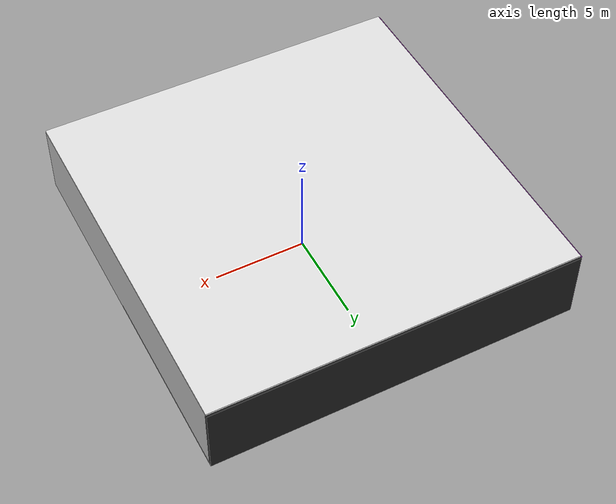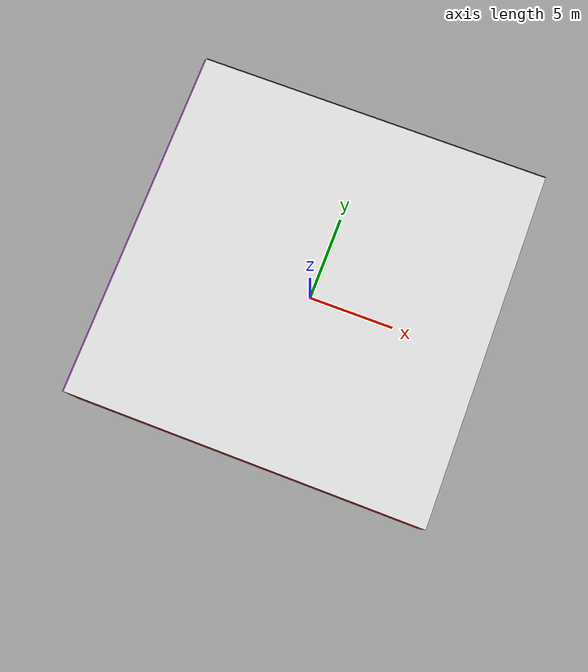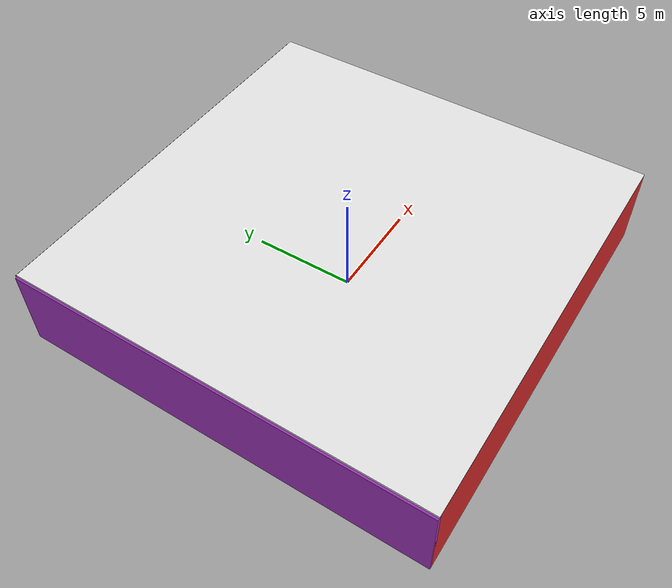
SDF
<sdf version="1.4">
 <world name="default">
  <physics type="ode">
   <max_step_size>0.001</max_step_size>
   <real_time_factor>1</real_time_factor>
   <real_time_update_rate>1000</real_time_update_rate>
   <gravity>0 0 -9.8</gravity>
  </physics>
  <scene><ambient>0.4 0.4 0.4 1</ambient><background>0.7 0.7 0.7 1</background><shadows>1</shadows></scene>
  <model name="Surrounding">
   <static>1</static>
   <link name="Ceiling">
    <collision name="Ceiling_Collision"><geometry><box><size>20 20 0.1</size></box></geometry></collision>
    <visual name="Ceiling_Visual">
     <geometry><box><size>20 20 0.1</size></box></geometry>
     <material>
      <script><uri>file://media/materials/scripts/gazebo.material</uri><name>Gazebo/White</name></script>
     </material>
    </visual>
    <pose>0 0 4.05 0 0 0</pose>
   </link>
   <link name="Wall_South">
    <collision name="Wall_South_Collision">
     <geometry><box><size>20 0 4</size></box></geometry>
     <pose>0 0 2 0 -0 0</pose>
    </collision>
    <visual name="Wall_South_Visual">
     <pose>0 0 2 0 -0 0</pose>
     <geometry><box><size>20 0 4</size></box></geometry>
     <material>
      <script><uri>file://media/materials/scripts/gazebo.material</uri><name>Gazebo/RedBright</name></script>
     </material>
    </visual>
    <velocity_decay><linear>0</linear><angular>0</angular></velocity_decay>
    <pose>0 -10 0 0 -0 0</pose>
   </link>
   <link name="Wall_East">
    <collision name="Wall_21_Collision">
     <geometry><box><size>20 0 4</size></box></geometry>
     <pose>0 0 2 0 -0 0</pose>
    </collision>
    <visual name="Wall_21_Visual">
     <pose>0 0 2 0 -0 0</pose>
     <geometry><box><size>20 0 4</size></box></geometry>
     <material>
      <script><uri>file://media/materials/scripts/gazebo.material</uri><name>Gazebo/CloudySky</name></script>
     </material>
    </visual>
    <velocity_decay><linear>0</linear><angular>0</angular></velocity_decay>
    <pose>10 0 0 0 -0 1.5708</pose>
   </link>
   <link name="Wall_North">
    <collision name="Wall_22_Collision">
     <geometry><box><size>20 0.2 4</size></box></geometry>
     <pose>0 0 2 0 -0 0</pose>
    </collision>
    <visual name="Wall_22_Visual">
     <pose>0 0 2 0 -0 0</pose>
     <geometry><box><size>20 0.2 4</size></box></geometry>
     <material>
      <script><uri>file://media/materials/scripts/gazebo.material</uri><name>Gazebo/FlatBlack</name></script>
     </material>
    </visual>
    <velocity_decay><linear>0</linear><angular>0</angular></velocity_decay>
    <pose>0 10 0 0 -0 0</pose>
   </link>
   <link name="Wall_West">
    <collision name="Wall_23_Collision">
     <geometry><box><size>20 0.2 4</size></box></geometry>
     <pose>0 0 2 0 -0 0</pose>
    </collision>
    <visual name="Wall_23_Visual">
     <pose>0 0 2 0 -0 0</pose>
     <geometry><box><size>20 0.2 4</size></box></geometry>
     <material>
      <script><uri>file://media/materials/scripts/gazebo.material</uri><name>Gazebo/PurpleGlow</name></script>
     </material>
    </visual>
    <velocity_decay><linear>0</linear><angular>0</angular></velocity_decay>
    <pose>-10 0 0 0 0 -1.5708</pose>
   </link>
   <link name="Ground_link">
    <collision name="collision">
     <pose>0 0 .05 0 -0 0</pose>
     <geometry><box><size>20 20 0.1</size></box></geometry>
    </collision>
    <visual name="visual">
     <pose>0 0 .05 0 -0 0</pose>
     <geometry><box><size>20 20 0.1</size></box></geometry>
     <material>
      <script><uri>file://media/materials/scripts/gazebo.material</uri><name>Gazebo/Grey</name></script>
     </material>
    </visual>
   </link>
   <static>1</static>
  </model>
  <spherical_coordinates>
   <surface_model>EARTH_WGS84</surface_model>
   <latitude_deg>0</latitude_deg>
   <longitude_deg>0</longitude_deg>
   <elevation>0</elevation>
   <heading_deg>0</heading_deg>
  </spherical_coordinates>
  <light name="lightball_0" type="diffuse">
   <diffuse>0.8 0.8 0.8 1</diffuse>
   <specular>0.2 0.2 0.2 1</specular>
   <attenuation>
    <range>100</range>
    <constant>0.7</constant>
    <linear>0.01</linear>
    <quadratic>0.001</quadratic>
   </attenuation>
   <direction>-0.5 0.1 -0.9</direction>
   <pose>2.924643022 -3.93283868866 1.80830734628 0 0 0</pose>
  </light>
  <light name="lightball_1" type="diffuse">
   <diffuse>0.8 0.8 0.8 1</diffuse>
   <specular>0.2 0.2 0.2 1</specular>
   <attenuation>
    <range>100</range>
    <constant>0.7</constant>
    <linear>0.01</linear>
    <quadratic>0.001</quadratic>
   </attenuation>
   <direction>-0.5 0.1 -0.9</direction>
   <pose>-8.78065113757 2.01006975265 1.48815710787 0 0 0</pose>
  </light>
  <light name="lightball_2" type="diffuse">
   <diffuse>0.8 0.8 0.8 1</diffuse>
   <specular>0.2 0.2 0.2 1</specular>
   <attenuation>
    <range>100</range>
    <constant>0.7</constant>
    <linear>0.01</linear>
    <quadratic>0.001</quadratic>
   </attenuation>
   <direction>-0.5 0.1 -0.9</direction>
   <pose>4.88347438253 -7.04867448047 2.54418258393 0 0 0</pose>
  </light>
  <light name="lightball_3" type="diffuse">
   <diffuse>0.8 0.8 0.8 1</diffuse>
   <specular>0.2 0.2 0.2 1</specular>
   <attenuation>
    <range>100</range>
    <constant>0.7</constant>
    <linear>0.01</linear>
    <quadratic>0.001</quadratic>
   </attenuation>
   <direction>-0.5 0.1 -0.9</direction>
   <pose>-5.52864846072 5.499401906 1.09017018242 0 0 0</pose>
  </light>
  <light name="lightball_4" type="diffuse">
   <diffuse>0.8 0.8 0.8 1</diffuse>
   <specular>0.2 0.2 0.2 1</specular>
   <attenuation>
    <range>100</range>
    <constant>0.7</constant>
    <linear>0.01</linear>
    <quadratic>0.001</quadratic>
   </attenuation>
   <direction>-0.5 0.1 -0.9</direction>
   <pose>4.85956219486 1.24496966432 3.67545318045 0 0 0</pose>
  </light>
  <light name="lightball_5" type="diffuse">
   <diffuse>0.8 0.8 0.8 1</diffuse>
   <specular>0.2 0.2 0.2 1</specular>
   <attenuation>
    <range>100</range>
    <constant>0.7</constant>
    <linear>0.01</linear>
    <quadratic>0.001</quadratic>
   </attenuation>
   <direction>-0.5 0.1 -0.9</direction>
   <pose>8.55131758779 1.57302972605 1.31268839121 0 0 0</pose>
  </light>
  <light name="lightball_6" type="diffuse">
   <diffuse>0.8 0.8 0.8 1</diffuse>
   <specular>0.2 0.2 0.2 1</specular>
   <attenuation>
    <range>100</range>
    <constant>0.7</constant>
    <linear>0.01</linear>
    <quadratic>0.001</quadratic>
   </attenuation>
   <direction>-0.5 0.1 -0.9</direction>
   <pose>2.16828092373 6.35050105598 2.56677286781 0 0 0</pose>
  </light>
  <light name="lightball_7" type="diffuse">
   <diffuse>0.8 0.8 0.8 1</diffuse>
   <specular>0.2 0.2 0.2 1</specular>
   <attenuation>
    <range>100</range>
    <constant>0.7</constant>
    <linear>0.01</linear>
    <quadratic>0.001</quadratic>
   </attenuation>
   <direction>-0.5 0.1 -0.9</direction>
   <pose>9.24773363178 -6.05916198829 3.89181664771 0 0 0</pose>
  </light>
  <light name="lightball_8" type="diffuse">
   <diffuse>0.8 0.8 0.8 1</diffuse>
   <specular>0.2 0.2 0.2 1</specular>
   <attenuation>
    <range>100</range>
    <constant>0.7</constant>
    <linear>0.01</linear>
    <quadratic>0.001</quadratic>
   </attenuation>
   <direction>-0.5 0.1 -0.9</direction>
   <pose>-3.31622462394 7.07708743358 1.44751796792 0 0 0</pose>
  </light>
  <light name="lightball_9" type="diffuse">
   <diffuse>0.8 0.8 0.8 1</diffuse>
   <specular>0.2 0.2 0.2 1</specular>
   <attenuation>
    <range>100</range>
    <constant>0.7</constant>
    <linear>0.01</linear>
    <quadratic>0.001</quadratic>
   </attenuation>
   <direction>-0.5 0.1 -0.9</direction>
   <pose>4.31092182549 -1.57329535999 0.730392953074 0 0 0</pose>
  </light>
  <light name="lightball_10" type="diffuse">
   <diffuse>0.8 0.8 0.8 1</diffuse>
   <specular>0.2 0.2 0.2 1</specular>
   <attenuation>
    <range>100</range>
    <constant>0.7</constant>
    <linear>0.01</linear>
    <quadratic>0.001</quadratic>
   </attenuation>
   <direction>-0.5 0.1 -0.9</direction>
   <pose>4.49806454189 6.50720449881 1.65533600295 0 0 0</pose>
  </light>
  <light name="lightball_11" type="diffuse">
   <diffuse>0.8 0.8 0.8 1</diffuse>
   <specular>0.2 0.2 0.2 1</specular>
   <attenuation>
    <range>100</range>
    <constant>0.7</constant>
    <linear>0.01</linear>
    <quadratic>0.001</quadratic>
   </attenuation>
   <direction>-0.5 0.1 -0.9</direction>
   <pose>-1.58681917804 0.871755332315 2.52652865061 0 0 0</pose>
  </light>
  <light name="lightball_12" type="diffuse">
   <diffuse>0.8 0.8 0.8 1</diffuse>
   <specular>0.2 0.2 0.2 1</specular>
   <attenuation>
    <range>100</range>
    <constant>0.7</constant>
    <linear>0.01</linear>
    <quadratic>0.001</quadratic>
   </attenuation>
   <direction>-0.5 0.1 -0.9</direction>
   <pose>-3.21307669836 -6.702579793 2.31869974921 0 0 0</pose>
  </light>
  <light name="lightball_13" type="diffuse">
   <diffuse>0.8 0.8 0.8 1</diffuse>
   <specular>0.2 0.2 0.2 1</specular>
   <attenuation>
    <range>100</range>
    <constant>0.7</constant>
    <linear>0.01</linear>
    <quadratic>0.001</quadratic>
   </attenuation>
   <direction>-0.5 0.1 -0.9</direction>
   <pose>7.70932210696 -6.94983152272 3.7921549486 0 0 0</pose>
  </light>
  <include>
   <uri>model://textured_shapes</uri>
   <pose>4.42818387897 -4.53165026829 0 0 0 1.35412584362</pose>
  </include>
  <include>
   <uri>model://robocup_3Dsim_goal</uri>
   <pose>4.07549731845 1.59721542239 0 0 0 1.22027600522</pose>
  </include>
  <include><uri>model://table</uri><pose>4.53259376201 4.68639689642 0 0 0 1.41715529984</pose></include>
  <include><uri>model://cabinet</uri><pose>7.51102416471 -7.53940894594 0 0 0 2.13597106732</pose></include>
  <include>
   <uri>model://textured_shapes</uri>
   <pose>6.79754073697 -5.21083762348 0 0 0 2.29172744135</pose>
  </include>
  <include>
   <uri>model://construction_cone</uri>
   <pose>6.81299713345 8.16348441565 0 0 0 3.10958728739</pose>
  </include>
 </world>
</sdf>

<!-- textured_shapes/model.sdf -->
<sdf version="1.6">
  <model name="textured_shapes">
    <pose>0 0 0.5 0 0 0</pose>
    <link name="box">
      <pose>0 -1.5 0 0 0 0</pose>
      <collision name="collision">
        <geometry>
          <box>
            <size>1 1 1</size>
          </box>
        </geometry>
      </collision>
      <visual name="visual">
        <geometry>
          <box>
            <size>1 1 1</size>
          </box>
        </geometry>
        <material>
          <script>
            <uri>model://../model_source/models/textured_shapes/materials/scripts</uri>
            <uri>model://../model_source/models/textured_shapes/materials/textures</uri>
            <name>TexturedShape/Squares</name>
          </script>
        </material>
      </visual>
    </link>
    <link name="sphere">
      <collision name="collision">
        <geometry>
          <sphere>
            <radius>0.5</radius>
          </sphere>
        </geometry>
      </collision>
      <visual name="visual">
        <geometry>
          <sphere>
            <radius>0.5</radius>
          </sphere>
        </geometry>
        <material>
          <script>
            <uri>model://../model_source/models/textured_shapes/materials/scripts</uri>
            <uri>model://../model_source/models/textured_shapes/materials/textures</uri>
            <name>TexturedShape/Squares</name>
          </script>
        </material>
      </visual>
    </link>
    <link name="cylinder">
      <pose>0 1.5 0 0 0 0</pose>
      <collision name="collision">
        <geometry>
          <cylinder>
            <radius>0.5</radius>
            <length>1</length>
          </cylinder>
        </geometry>
      </collision>
      <visual name="visual">
        <geometry>
          <cylinder>
            <radius>0.5</radius>
            <length>1</length>
          </cylinder>
        </geometry>
        <material>
          <script>
            <uri>model://../model_source/models/textured_shapes/materials/scripts</uri>
            <uri>model://../model_source/models/textured_shapes/materials/textures</uri>
            <name>TexturedShape/Squares</name>
          </script>
        </material>
      </visual>
    </link>
  </model>
</sdf>

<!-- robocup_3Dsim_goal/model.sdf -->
<sdf version="1.5">
  <model name="robocup_3d_goal">
    <static>true</static>
    <link name="left_post">
      <pose>0 1.05 0.45 0 0 0</pose>
      <collision name="collision">
        <geometry>
          <cylinder>
            <radius>0.05</radius>
            <length>0.9</length>
          </cylinder>
        </geometry>
      </collision>
      <visual name="visual">
        <geometry>
          <cylinder>
            <radius>0.05</radius>
            <length>0.9</length>
          </cylinder>
        </geometry>
        <material>
          <script>
            <uri>file://media/materials/scripts/gazebo.material</uri>
            <name>Gazebo/ZincYellow</name>
          </script>
        </material>
      </visual>
    </link>
    <link name="left_support_horiz_lower">
      <pose>0.30 1.05 0.01 0 0 0</pose>
      <collision name="collision">
        <geometry>
          <box>
            <size>0.50 0.02 0.02</size>
          </box>
        </geometry>
      </collision>
      <visual name="visual">
        <geometry>
          <box>
            <size>0.50 0.02 0.02</size>
          </box>
        </geometry>
        <material>
          <script>
            <uri>file://media/materials/scripts/gazebo.material</uri>
            <name>Gazebo/White</name>
          </script>
        </material>
      </visual>
    </link>
    <link name="left_support_horiz_upper">
      <pose>0.30 1.05 0.79 0 0 0</pose>
      <collision name="collision">
        <geometry>
          <box>
            <size>0.50 0.02 0.02</size>
          </box>
        </geometry>
      </collision>
      <visual name="visual">
        <geometry>
          <box>
            <size>0.50 0.02 0.02</size>
          </box>
        </geometry>
        <material>
          <script>
            <uri>file://media/materials/scripts/gazebo.material</uri>
            <name>Gazebo/White</name>
          </script>
        </material>
      </visual>
    </link>
    <link name="left_support_vertical">
      <pose>0.56 1.05 0.4 0 1.5708 0</pose>
      <collision name="collision">
        <geometry>
          <box>
            <size>0.80 0.02 0.02</size>
          </box>
        </geometry>
      </collision>
      <visual name="visual">
        <geometry>
          <box>
            <size>0.80 0.02 0.02</size>
          </box>
        </geometry>
        <material>
          <script>
            <uri>file://media/materials/scripts/gazebo.material</uri>
            <name>Gazebo/White</name>
          </script>
        </material>
      </visual>
    </link>
    <link name="right_support_horiz_lower">
      <pose>0.30 -1.05 0.01 0 0 0</pose>
      <collision name="collision">
        <geometry>
          <box>
            <size>0.50 0.02 0.02</size>
          </box>
        </geometry>
      </collision>
      <visual name="visual">
        <geometry>
          <box>
            <size>0.50 0.02 0.02</size>
          </box>
        </geometry>
        <material>
          <script>
            <uri>file://media/materials/scripts/gazebo.material</uri>
            <name>Gazebo/White</name>
          </script>
        </material>
      </visual>
    </link>
    <link name="right_support_horiz_upper">
      <pose>0.30 -1.05 0.79 0 0 0</pose>
      <collision name="collision">
        <geometry>
          <box>
            <size>0.50 0.02 0.02</size>
          </box>
        </geometry>
      </collision>
      <visual name="visual">
        <geometry>
          <box>
            <size>0.50 0.02 0.02</size>
          </box>
        </geometry>
        <material>
          <script>
            <uri>file://media/materials/scripts/gazebo.material</uri>
            <name>Gazebo/White</name>
          </script>
        </material>
      </visual>
    </link>
    <link name="right_support_vertical">
      <pose>0.56 -1.05 0.4 0 1.5708 0</pose>
      <collision name="collision">
        <geometry>
          <box>
            <size>0.80 0.02 0.02</size>
          </box>
        </geometry>
      </collision>
      <visual name="visual">
        <geometry>
          <box>
            <size>0.80 0.02 0.02</size>
          </box>
        </geometry>
        <material>
          <script>
            <uri>file://media/materials/scripts/gazebo.material</uri>
            <name>Gazebo/White</name>
          </script>
        </material>
      </visual>
    </link>
    <link name="center_support_horiz_lower">
      <pose>0.56 0 0.01 0 1.5708 0</pose>
      <collision name="collision">
        <geometry>
          <box>
            <size>0.02 2.08 0.02</size>
          </box>
        </geometry>
      </collision>
      <visual name="visual">
        <geometry>
          <box>
            <size>0.02 2.08 0.02</size>
          </box>
        </geometry>
        <material>
          <script>
            <uri>file://media/materials/scripts/gazebo.material</uri>
            <name>Gazebo/White</name>
          </script>
        </material>
      </visual>
    </link>
    <link name="center_support_horiz_upper">
      <pose>0.56 0 0.79 0 1.5708 0</pose>
      <collision name="collision">
        <geometry>
          <box>
            <size>0.02 2.08 0.02</size>
          </box>
        </geometry>
      </collision>
      <visual name="visual">
        <geometry>
          <box>
            <size>0.02 2.08 0.02</size>
          </box>
        </geometry>
        <material>
          <script>
            <uri>file://media/materials/scripts/gazebo.material</uri>
            <name>Gazebo/White</name>
          </script>
        </material>
      </visual>
    </link>
    <link name="right_post">
      <pose>0 -1.05 0.45 0 0 0</pose>
      <collision name="collision">
        <geometry>
          <cylinder>
            <radius>0.05</radius>
            <length>0.9</length>
          </cylinder>
        </geometry>
      </collision>
      <visual name="visual">
        <geometry>
          <cylinder>
            <radius>0.05</radius>
            <length>0.9</length>
          </cylinder>
        </geometry>
        <material>
          <script>
            <uri>file://media/materials/scripts/gazebo.material</uri>
            <name>Gazebo/ZincYellow</name>
          </script>
        </material>
      </visual>
    </link>
    <link name="crossbar">
      <pose>0 0 0.85 1.57 1.57 0</pose>
      <collision name="collision">
        <geometry>
          <cylinder>
            <radius>0.05</radius>
            <length>2.0</length>
          </cylinder>
        </geometry>
      </collision>
      <visual name="visual">
        <geometry>
          <cylinder>
            <radius>0.05</radius>
            <length>2.0</length>
          </cylinder>
        </geometry>
        <material>
          <script>
            <uri>file://media/materials/scripts/gazebo.material</uri>
            <name>Gazebo/ZincYellow</name>
          </script>
        </material>
      </visual>
    </link>
    <link name="center_net">
      <pose>0.56 0 0.40 0 0 0</pose>
      <collision name="collision">
        <geometry>
          <box>
            <size>0.01 2.1 0.80</size>
          </box>
        </geometry>
      </collision>
      <visual name="visual">
        <geometry>
          <box>
            <size>0.01 2.1 0.80</size>
          </box>
        </geometry>
        <material>
          <script>
            <uri>model://../model_source/models/robocup09_spl_field/materials/scripts/</uri>
            <uri>model://../model_source/models/robocup09_spl_field/materials/textures/</uri>
            <name>RoboCup/Net</name>
          </script>
        </material>
      </visual>
    </link>
    <link name="left_net">
      <pose>0.30 1.05 0.40 0 0 0</pose>
      <collision name="collision">
        <geometry>
          <box>
            <size>0.50 0.01 0.76</size>
          </box>
        </geometry>
      </collision>
      <visual name="visual">
        <geometry>
          <box>
            <size>0.50 0.01 0.76</size>
          </box>
        </geometry>
        <material>
          <script>
            <uri>model://../model_source/models/robocup09_spl_field/materials/scripts/</uri>
            <uri>model://../model_source/models/robocup09_spl_field/materials/textures/</uri>
            <name>RoboCup/Net</name>
          </script>
        </material>
      </visual>
    </link>
    <link name="right_net">
      <pose>0.30 -1.05 0.40 0 0 0</pose>
      <collision name="collision">
        <geometry>
          <box>
            <size>0.50 0.01 0.76</size>
          </box>
        </geometry>
      </collision>
      <visual name="visual">
        <geometry>
          <box>
            <size>0.50 0.01 0.76</size>
          </box>
        </geometry>
        <material>
          <script>
            <uri>model://../model_source/models/robocup09_spl_field/materials/scripts/</uri>
            <uri>model://../model_source/models/robocup09_spl_field/materials/textures/</uri>
            <name>RoboCup/Net</name>
          </script>
        </material>
      </visual>
    </link>
  </model>
</sdf>

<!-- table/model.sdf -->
<sdf version="1.5">
  <model name="table">
    <static>true</static>
    <link name="link">
      <collision name="surface">
        <pose>0 0 1.0 0 0 0</pose>
        <geometry>
          <box>
            <size>1.5 0.8 0.03</size>
          </box>
        </geometry>
        <surface>
          <friction>
            <ode>
              <mu>0.6</mu>
              <mu2>0.6</mu2>
            </ode>
          </friction>
        </surface>
      </collision>
      <visual name="visual1">
        <pose>0 0 1.0 0 0 0</pose>
        <geometry>
          <box>
            <size>1.5 0.8 0.03</size>
          </box>
        </geometry>
        <material>
          <script>
            <uri>model://media/materials/scripts/gazebo.material</uri>
            <name>Gazebo/Wood</name>
          </script>
        </material>
      </visual>
      <collision name="front_left_leg">
        <pose>0.68 0.38 0.5 0 0 0</pose>
        <geometry>
          <cylinder>
            <radius>0.02</radius>
            <length>1.0</length>
          </cylinder>
        </geometry>
      </collision>
      <visual name="front_left_leg">
        <pose>0.68 0.38 0.5 0 0 0</pose>
        <geometry>
          <cylinder>
            <radius>0.02</radius>
            <length>1.0</length>
          </cylinder>
        </geometry>
        <material>
          <script>
            <uri>model://media/materials/scripts/gazebo.material</uri>
            <name>Gazebo/Grey</name>
          </script>
        </material>
      </visual>
      <collision name="front_right_leg">
        <pose>0.68 -0.38 0.5 0 0 0</pose>
        <geometry>
          <cylinder>
            <radius>0.02</radius>
            <length>1.0</length>
          </cylinder>
        </geometry>
      </collision>
      <visual name="front_right_leg">
        <pose>0.68 -0.38 0.5 0 0 0</pose>
        <geometry>
          <cylinder>
            <radius>0.02</radius>
            <length>1.0</length>
          </cylinder>
        </geometry>
        <material>
          <script>
            <uri>model://media/materials/scripts/gazebo.material</uri>
            <name>Gazebo/Grey</name>
          </script>
        </material>
      </visual>
      <collision name="back_right_leg">
        <pose>-0.68 -0.38 0.5 0 0 0</pose>
        <geometry>
          <cylinder>
            <radius>0.02</radius>
            <length>1.0</length>
          </cylinder>
        </geometry>
      </collision>
      <visual name="back_right_leg">
        <pose>-0.68 -0.38 0.5 0 0 0</pose>
        <geometry>
          <cylinder>
            <radius>0.02</radius>
            <length>1.0</length>
          </cylinder>
        </geometry>
        <material>
          <script>
            <uri>model://media/materials/scripts/gazebo.material</uri>
            <name>Gazebo/Grey</name>
          </script>
        </material>
      </visual>
      <collision name="back_left_leg">
        <pose>-0.68 0.38 0.5 0 0 0</pose>
        <geometry>
          <cylinder>
            <radius>0.02</radius>
            <length>1.0</length>
          </cylinder>
        </geometry>
      </collision>
      <visual name="back_left_leg">
        <pose>-0.68 0.38 0.5 0 0 0</pose>
        <geometry>
          <cylinder>
            <radius>0.02</radius>
            <length>1.0</length>
          </cylinder>
        </geometry>
        <material>
          <script>
            <uri>model://media/materials/scripts/gazebo.material</uri>
            <name>Gazebo/Grey</name>
          </script>
        </material>
      </visual>
    </link>
  </model>
</sdf>

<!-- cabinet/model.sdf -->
<sdf version="1.5">
  <model name="cabinet">
    <static>true</static>
    <link name="cabinet_bottom_plate">
      <inertial>
        <pose>0 0 -1 0 0 0</pose>
        <inertia>
          <ixx>2.050000</ixx>
          <ixy>0</ixy>
          <ixz>0</ixz>
          <iyy>2.050000</iyy>
          <iyz>0</iyz>
          <izz>2.050000</izz>
        </inertia>
        <mass>25.000000</mass>
      </inertial>
      <collision name="cabinet_bottom_plate_geom">
        <pose>0 0 0.010000 0 0 0</pose>
        <geometry>
          <box>
            <size>0.450000 0.450000 0.020000</size>
          </box>
        </geometry>
      </collision>
      <visual name="cabinet_bottom_plate_geom_visual">
        <pose>0 0 0.010000 0 0 0</pose>
        <geometry>
          <box>
            <size>0.450000 0.450000 0.020000</size>
          </box>
        </geometry>
        <material>
          <script>
            <uri>model://media/materials/scripts/gazebo.material</uri>
            <name>Gazebo/Wood</name>
          </script>
        </material>
      </visual>
      <collision name="cabinet_bottom_plate_geom_cabinet_back_plate">
        <pose>0.235000 0 0.510000 0 0 0</pose>
        <geometry>
          <box>
            <size>0.020000 0.450000 1.020000</size>
          </box>
        </geometry>
      </collision>
      <visual name="cabinet_bottom_plate_geom_cabinet_back_plate_visual">
        <pose>0.235000 0 0.510000 0 0 0</pose>
        <geometry>
          <box>
            <size>0.020000 0.450000 1.020000</size>
          </box>
        </geometry>
        <material>
          <script>
            <uri>model://media/materials/scripts/gazebo.material</uri>
            <name>Gazebo/Wood</name>
          </script>
        </material>
      </visual>
      <collision name="cabinet_bottom_plate_geom_cabinet_left_plate">
        <pose>0 0.235000 0.510000 0 0 0</pose>
        <geometry>
          <box>
            <size>0.450000 0.020000 1.020000</size>
          </box>
        </geometry>
      </collision>
      <visual name="cabinet_bottom_plate_geom_cabinet_left_plate_visual">
        <pose>0 0.235000 0.510000 0 0 0</pose>
        <geometry>
          <box>
            <size>0.450000 0.020000 1.020000</size>
          </box>
        </geometry>
        <material>
          <script>
            <uri>model://media/materials/scripts/gazebo.material</uri>
            <name>Gazebo/Wood</name>
          </script>
        </material>
      </visual>
      <collision name="cabinet_bottom_plate_geom_cabinet_middle_plate">
        <pose>0 0 0.510000 0 0 0</pose>
        <geometry>
          <box>
            <size>0.450000 0.450000 0.020000</size>
          </box>
        </geometry>
      </collision>
      <visual name="cabinet_bottom_plate_geom_cabinet_middle_plate_visual">
        <pose>0 0 0.510000 0 0 0</pose>
        <geometry>
          <box>
            <size>0.450000 0.450000 0.020000</size>
          </box>
        </geometry>
        <material>
          <script>
            <uri>model://media/materials/scripts/gazebo.material</uri>
            <name>Gazebo/Wood</name>
          </script>
        </material>
      </visual>
      <collision name="cabinet_bottom_plate_geom_cabinet_right_plate">
        <pose>0 -0.235000 0.510000 0 0 0</pose>
        <geometry>
          <box>
            <size>0.450000 0.020000 1.020000</size>
          </box>
        </geometry>
      </collision>
      <visual name="cabinet_bottom_plate_geom_cabinet_right_plate_visual">
        <pose>0 -0.235000 0.510000 0 0 0</pose>
        <geometry>
          <box>
            <size>0.450000 0.020000 1.020000</size>
          </box>
        </geometry>
        <material>
          <script>
            <uri>model://media/materials/scripts/gazebo.material</uri>
            <name>Gazebo/Wood</name>
          </script>
        </material>
      </visual>
      <collision name="cabinet_bottom_plate_geom_cabinet_top_plate">
        <pose>0 0 1.010000 0 0 0</pose>
        <geometry>
          <box>
            <size>0.450000 0.450000 0.020000</size>
          </box>
        </geometry>
      </collision>
      <visual name="cabinet_bottom_plate_geom_cabinet_top_plate_visual">
        <pose>0 0 1.010000 0 0 0</pose>
        <geometry>
          <box>
            <size>0.450000 0.450000 0.020000</size>
          </box>
        </geometry>
        <material>
          <script>
            <uri>model://media/materials/scripts/gazebo.material</uri>
            <name>Gazebo/Wood</name>
          </script>
        </material>
      </visual>
    </link>
  </model>
</sdf>

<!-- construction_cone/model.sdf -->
<sdf version="1.5">
  <model name="Construction Cone">
    <link name="link">
      <collision name="collision">
        <geometry>
          <mesh>
            <scale>10 10 10</scale>
            <uri>file://isr-testbed/construction_cone/meshes/construction_cone.dae</uri>
          </mesh>
        </geometry>
      </collision>
      <visual name="visual">
        <geometry>
          <mesh>
            <scale>10 10 10</scale>
            <uri>file://isr-testbed/construction_cone/meshes/construction_cone.dae</uri>
          </mesh>
        </geometry>
      </visual>
    </link>
  </model>
</sdf>
